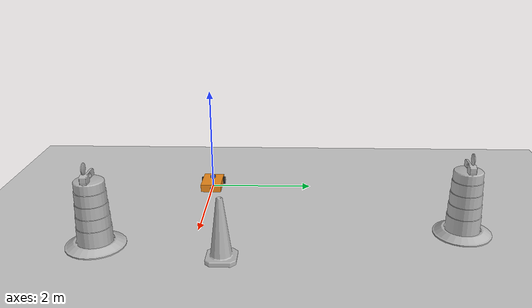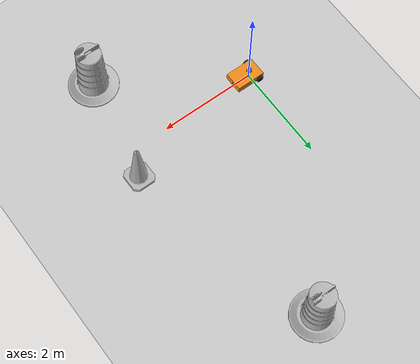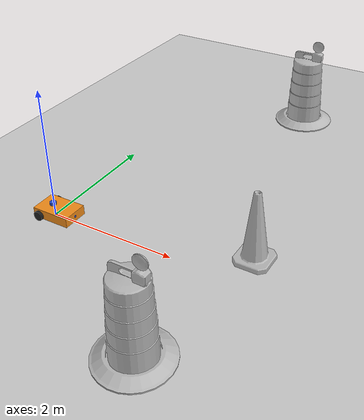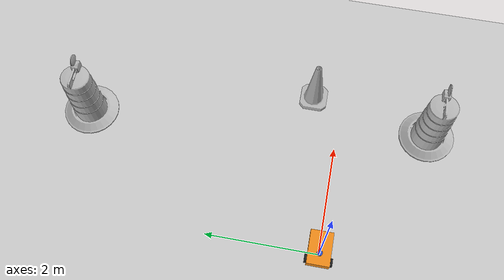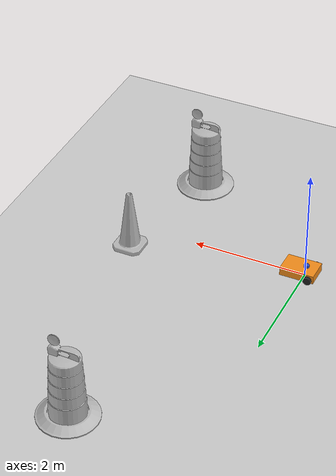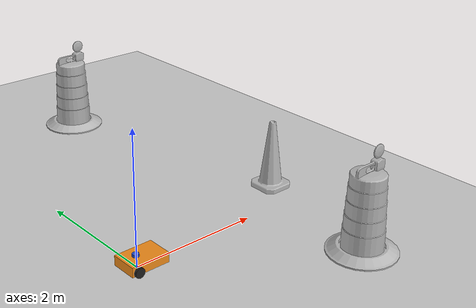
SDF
<sdf version="1.7">
 <world name="default">
  <light name="sun" type="directional">
   <pose>0 0 10 0 -0 0</pose>
   <diffuse>0.8 0.8 0.8 1</diffuse>
   <specular>0.2 0.2 0.2 1</specular>
   <attenuation>
    <range>1000</range>
    <constant>0.9</constant>
    <linear>0.01</linear>
    <quadratic>0.001</quadratic>
   </attenuation>
   <direction>-0.5 0.1 -0.9</direction>
   <spot><inner_angle>0</inner_angle><outer_angle>0</outer_angle><falloff>0</falloff></spot>
  </light>
  <model name="ground_plane">
   <static>1</static>
   <link name="link">
    <collision name="collision">
     <geometry><plane><normal>0 0 1</normal><size>100 100</size></plane></geometry>
     <surface><friction><ode><mu>100</mu><mu2>50</mu2></ode></friction></surface>
    </collision>
    <visual name="visual">
     <cast_shadows>0</cast_shadows>
     <geometry><plane><normal>0 0 1</normal><size>100 100</size></plane></geometry>
     <material>
      <script><uri>file://media/materials/scripts/gazebo.material</uri><name>Gazebo/Grey</name></script>
     </material>
    </visual>
   </link>
  </model>
  <gravity>0 0 -9.8</gravity>
  <magnetic_field>6e-06 2.3e-05 -4.2e-05</magnetic_field>
  <atmosphere type="adiabatic"/>
  <physics type="ode">
   <max_step_size>0.001</max_step_size>
   <real_time_factor>1</real_time_factor>
   <real_time_update_rate>1000</real_time_update_rate>
  </physics>
  <scene><ambient>0.4 0.4 0.4 1</ambient><background>0.7 0.7 0.7 1</background><shadows>1</shadows></scene>
  <audio><device>default</device></audio>
  <spherical_coordinates>
   <surface_model>EARTH_WGS84</surface_model>
   <latitude_deg>0</latitude_deg>
   <longitude_deg>0</longitude_deg>
   <elevation>0</elevation>
   <heading_deg>0</heading_deg>
  </spherical_coordinates>
  <model name="my_bot">
   <link name="base_link">
    <inertial>
     <pose>0.210769 0 0.071154 0 -0 0</pose>
     <mass>1.3</mass>
     <inertia>
      <ixx>0.0194399</ixx>
      <ixy>5.39099e-19</ixy>
      <ixz>0.00274615</ixz>
      <iyy>0.0378358</iyy>
      <iyz>1.23432e-19</iyz>
      <izz>0.0492376</izz>
     </inertia>
    </inertial>
    <collision name="base_link_fixed_joint_lump__chassis_collision">
     <pose>0.2 0 0.075 0 -0 0</pose>
     <geometry><box><size>0.6 0.4 0.15</size></box></geometry>
    </collision>
    <collision name="base_link_fixed_joint_lump__laser_frame_collision_1">
     <pose>0.1 0 0.175 0 -0 0</pose>
     <geometry><cylinder><length>0.04</length><radius>0.05</radius></cylinder></geometry>
    </collision>
    <collision name="base_link_fixed_joint_lump__left_caster_wheel_collision_2">
     <pose>0.32 0.1 0 0 -0 0</pose>
     <geometry><sphere><radius>0.025</radius></sphere></geometry>
     <surface><friction><ode><mu>0.001</mu><mu2>0.001</mu2></ode></friction></surface>
    </collision>
    <collision name="base_link_fixed_joint_lump__right_caster_wheel_collision_3">
     <pose>0.32 -0.1 0 0 -0 0</pose>
     <geometry><sphere><radius>0.025</radius></sphere></geometry>
     <surface><friction><ode><mu>0.001</mu><mu2>0.001</mu2></ode></friction></surface>
    </collision>
    <visual name="base_link_fixed_joint_lump__chassis_visual">
     <pose>0.2 0 0.075 0 -0 0</pose>
     <geometry><box><size>0.6 0.4 0.15</size></box></geometry>
     <material>
      <script><name>Gazebo/Orange</name><uri>file://media/materials/scripts/gazebo.material</uri></script>
     </material>
    </visual>
    <visual name="base_link_fixed_joint_lump__camera_link_visual_1">
     <pose>0.5 0 0.08 0 -0 0</pose>
     <geometry><box><size>0.01 0.03 0.03</size></box></geometry>
     <material>
      <script><name>Gazebo/Blue</name><uri>file://media/materials/scripts/gazebo.material</uri></script>
     </material>
    </visual>
    <visual name="base_link_fixed_joint_lump__laser_frame_visual_2">
     <pose>0.1 0 0.175 0 -0 0</pose>
     <geometry><cylinder><length>0.04</length><radius>0.05</radius></cylinder></geometry>
     <material>
      <script><name>Gazebo/Blue</name><uri>file://media/materials/scripts/gazebo.material</uri></script>
     </material>
    </visual>
    <visual name="base_link_fixed_joint_lump__left_caster_wheel_visual_3">
     <pose>0.32 0.1 0 0 -0 0</pose>
     <geometry><sphere><radius>0.025</radius></sphere></geometry>
     <material>
      <script><name>Gazebo/Black</name><uri>file://media/materials/scripts/gazebo.material</uri></script>
     </material>
    </visual>
    <visual name="base_link_fixed_joint_lump__right_caster_wheel_visual_4">
     <pose>0.32 -0.1 0 0 -0 0</pose>
     <geometry><sphere><radius>0.025</radius></sphere></geometry>
     <material>
      <script><name>Gazebo/Black</name><uri>file://media/materials/scripts/gazebo.material</uri></script>
     </material>
    </visual>
    <sensor name="camera" type="camera">
     <visualize>1</visualize>
     <update_rate>10</update_rate>
     <camera>
      <horizontal_fov>1.089</horizontal_fov>
      <image><format>R8G8B8</format><width>640</width><height>480</height></image>
      <clip><near>0.05</near><far>8</far></clip>
     </camera>
     <plugin name="camera_controller" filename="libgazebo_ros_camera.so">
      <frame_name>camera_optical_link</frame_name>
     </plugin>
     <pose>0.5 0 0.08 0 -0 0</pose>
    </sensor>
    <sensor name="laser" type="ray">
     <visualize>0</visualize>
     <ray>
      <scan>
       <horizontal>
        <samples>360</samples>
        <resolution>1</resolution>
        <min_angle>-3.14</min_angle>
        <max_angle>3.14</max_angle>
       </horizontal>
       <vertical><samples>1</samples><min_angle>0</min_angle><max_angle>0</max_angle></vertical>
      </scan>
      <range><min>0.3</min><max>12</max><resolution>0.01</resolution></range>
     </ray>
     <plugin name="laser_controller" filename="libgazebo_ros_ray_sensor.so">
      <ros><argument>~/out:=scan</argument></ros>
      <output_type>sensor_msgs/LaserScan</output_type>
      <frame_name>laser_frame</frame_name>
     </plugin>
     <pose>0.1 0 0.175 0 -0 0</pose>
    </sensor>
   </link>
   <joint name="left_wheel_joint" type="revolute">
    <pose relative_to="base_link">0 0.22 0.05 -1.5708 0 0</pose>
    <parent>base_link</parent>
    <child>left_wheel</child>
    <axis>
     <xyz>0 0 1</xyz>
     <limit><lower>-1e+16</lower><upper>1e+16</upper></limit>
     <dynamics><spring_reference>0</spring_reference><spring_stiffness>0</spring_stiffness></dynamics>
    </axis>
   </joint>
   <link name="left_wheel">
    <pose relative_to="left_wheel_joint">0 0 0 0 -0 0</pose>
    <inertial>
     <mass>0.1</mass>
     <inertia>
      <ixx>0.000153958</ixx>
      <ixy>0</ixy>
      <ixz>0</ixz>
      <iyy>0.000153958</iyy>
      <iyz>0</iyz>
      <izz>0.00028125</izz>
     </inertia>
    </inertial>
    <collision name="left_wheel_collision">
     <geometry><cylinder><length>0.04</length><radius>0.075</radius></cylinder></geometry>
    </collision>
    <visual name="left_wheel_visual">
     <geometry><cylinder><length>0.04</length><radius>0.075</radius></cylinder></geometry>
     <material>
      <script><name>Gazebo/Black</name><uri>file://media/materials/scripts/gazebo.material</uri></script>
     </material>
    </visual>
   </link>
   <joint name="right_wheel_joint" type="revolute">
    <pose relative_to="base_link">0 -0.22 0.05 1.5708 -0 0</pose>
    <parent>base_link</parent>
    <child>right_wheel</child>
    <axis>
     <xyz>0 0 -1</xyz>
     <limit><lower>-1e+16</lower><upper>1e+16</upper></limit>
     <dynamics><spring_reference>0</spring_reference><spring_stiffness>0</spring_stiffness></dynamics>
    </axis>
   </joint>
   <link name="right_wheel">
    <pose relative_to="right_wheel_joint">0 0 0 0 -0 0</pose>
    <inertial>
     <mass>0.1</mass>
     <inertia>
      <ixx>0.000153958</ixx>
      <ixy>0</ixy>
      <ixz>0</ixz>
      <iyy>0.000153958</iyy>
      <iyz>0</iyz>
      <izz>0.00028125</izz>
     </inertia>
    </inertial>
    <collision name="right_wheel_collision">
     <geometry><cylinder><length>0.04</length><radius>0.075</radius></cylinder></geometry>
    </collision>
    <visual name="right_wheel_visual">
     <geometry><cylinder><length>0.04</length><radius>0.075</radius></cylinder></geometry>
     <material>
      <script><name>Gazebo/Black</name><uri>file://media/materials/scripts/gazebo.material</uri></script>
     </material>
    </visual>
   </link>
   <static>0</static>
   <plugin name="gazebo_ros2_control" filename="libgazebo_ros2_control.so">
    <parameters>/home/golfsko/dev_ws/install/robotklipper/share/robotklipper/config/my_controllers.yaml</parameters>
   </plugin>
   <pose>-0.116294 -0.000496 0.025 0 1e-06 0.000694</pose>
  </model>
  <model name="Construction Cone">
   <link name="link">
    <collision name="collision">
     <geometry>
      <mesh><scale>10 10 10</scale><uri>model://construction_cone/meshes/construction_cone.dae</uri></mesh>
     </geometry>
    </collision>
    <visual name="visual">
     <geometry>
      <mesh><scale>10 10 10</scale><uri>model://construction_cone/meshes/construction_cone.dae</uri></mesh>
     </geometry>
    </visual>
    <inertial>
     <inertia><ixx>1</ixx><ixy>0</ixy><ixz>0</ixz><iyy>1</iyy><iyz>0</iyz><izz>1</izz></inertia>
     <mass>1</mass>
    </inertial>
   </link>
   <pose>3.0027 0.528444 -5e-06 -4e-06 1e-06 0</pose>
  </model>
  <model name="Construction Barrel">
   <link name="link">
    <inertial>
     <pose>0 0 0.4 0 -0 0</pose>
     <mass>500</mass>
     <inertia><ixx>51.2096</ixx><iyy>51.2096</iyy><izz>25</izz><ixy>0</ixy><ixz>0</ixz><iyz>0</iyz></inertia>
    </inertial>
    <collision name="collision">
     <geometry><mesh><uri>model://construction_barrel/meshes/construction_barrel.dae</uri></mesh></geometry>
    </collision>
    <visual name="visual">
     <geometry><mesh><uri>model://construction_barrel/meshes/construction_barrel.dae</uri></mesh></geometry>
    </visual>
   </link>
   <pose>2.5811 -1.65158 0 0 0 -3e-06</pose>
  </model>
  <model name="Construction Barrel_0">
   <link name="link">
    <inertial>
     <pose>0 0 0.4 0 -0 0</pose>
     <mass>500</mass>
     <inertia><ixx>51.2096</ixx><iyy>51.2096</iyy><izz>25</izz><ixy>0</ixy><ixz>0</ixz><iyz>0</iyz></inertia>
    </inertial>
    <collision name="collision">
     <geometry><mesh><uri>model://construction_barrel/meshes/construction_barrel.dae</uri></mesh></geometry>
    </collision>
    <visual name="visual">
     <geometry><mesh><uri>model://construction_barrel/meshes/construction_barrel.dae</uri></mesh></geometry>
    </visual>
   </link>
   <pose>1.99353 4.64117 -1e-06 3e-06 -2e-06 -2e-06</pose>
  </model>
 </world>
</sdf>
